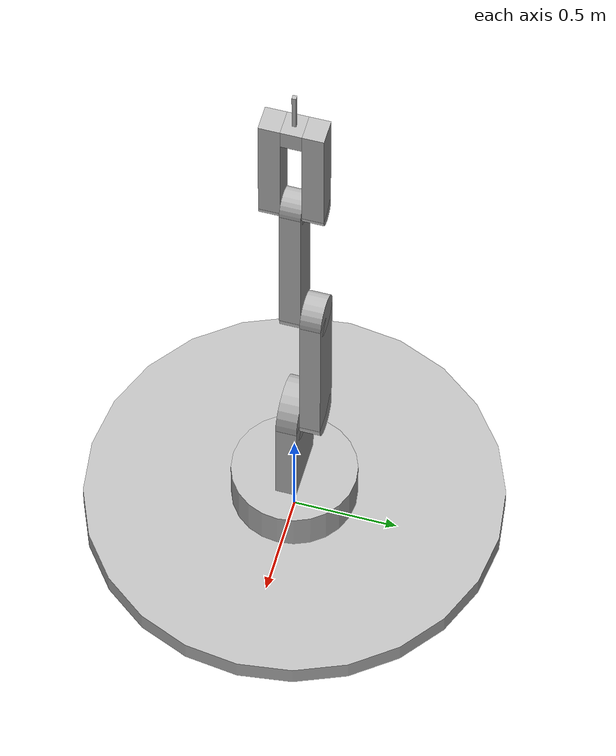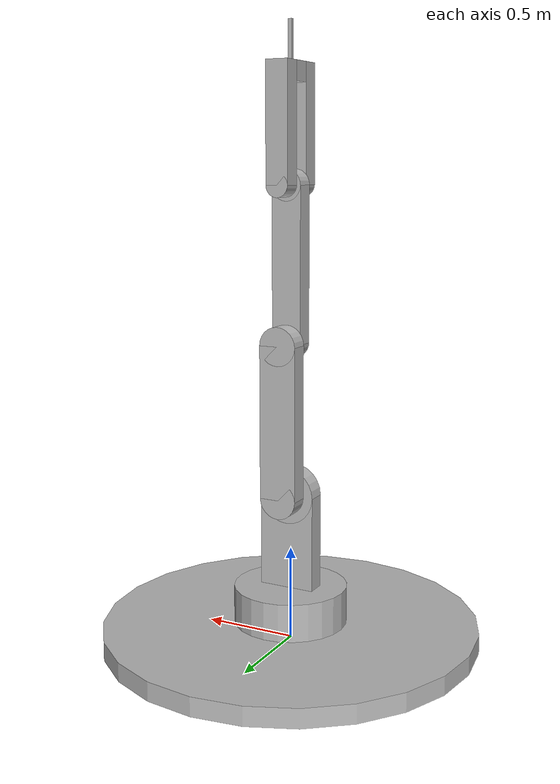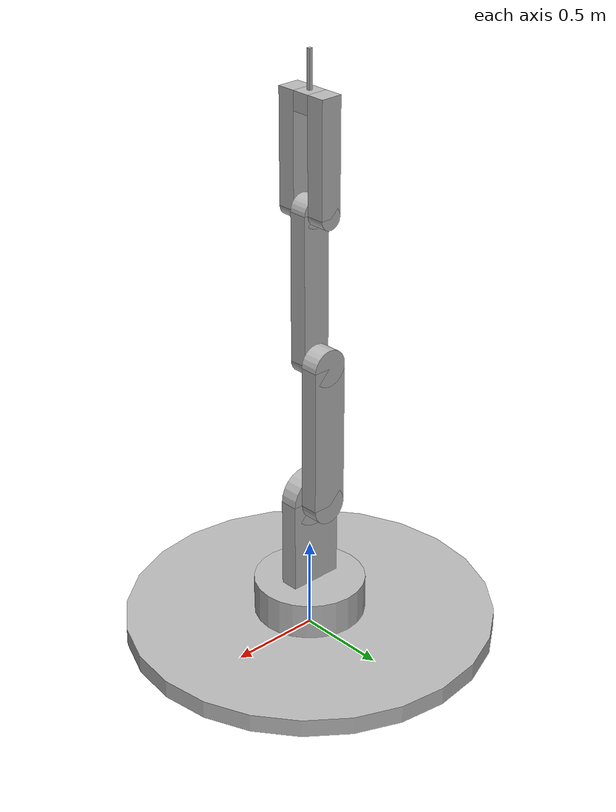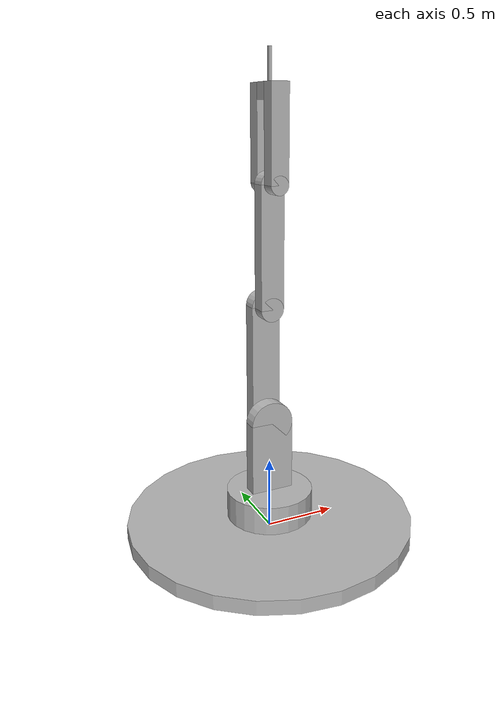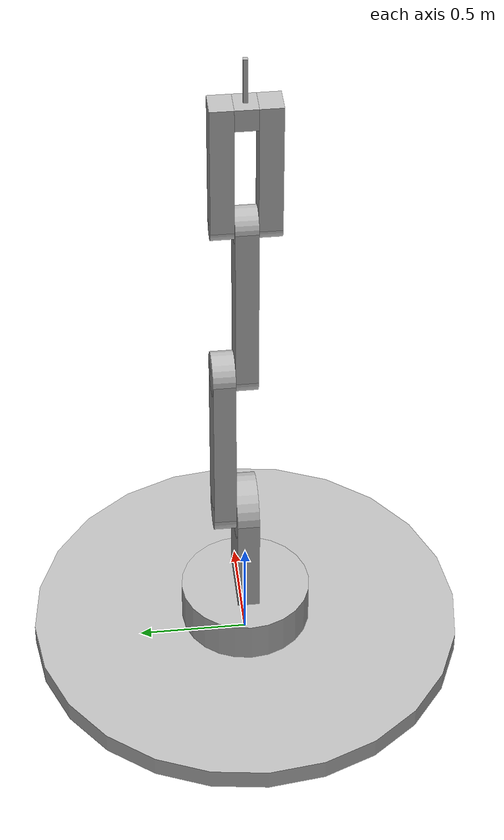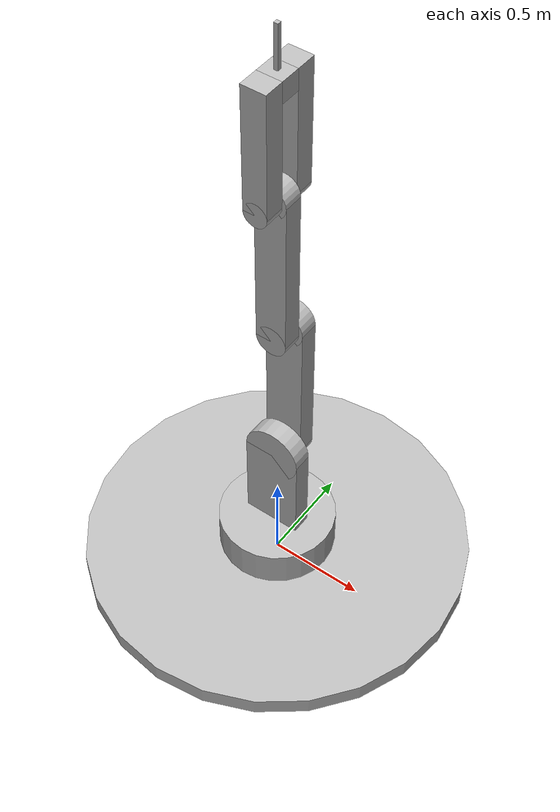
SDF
<?xml version='1.0'?>
<sdf version='1.4'>
  <model name="my_robot">
	<static>false</static>

          <link name='base'>

          <pose>0 0 .05 0 0 0</pose>
            <collision name='collision'>
              <geometry>
                <cylinder>
                  <radius>1</radius>
                  <length>.1</length>
                </cylinder>
              </geometry>
            </collision>

            <visual name='visual'>
              <geometry>
                <cylinder>
                  <radius>1</radius>
                  <length>.1</length>
                </cylinder>
              </geometry>
            </visual>
          </link>

          <link name='firs_joint'>
          <pose>0 0 .2 0 0 0</pose>
            <collision name='collision'>
              <geometry>
                <cylinder>
                  <radius>.3</radius>
                  <length>.2</length>
                </cylinder>
              </geometry>
            </collision>

            <visual name='visual'>
              <geometry>
                <cylinder>
                  <radius>.3</radius>
                  <length>.2</length>
                </cylinder>
              </geometry>
            </visual>
          </link>

           <link name='center_support_1_2'>
              <pose>0 0 .55 0 0 0</pose>
              <collision name='collision'>
                <geometry>
                  <box>
                    <size>.3 .1 .5</size>
                  </box>
                </geometry>
              </collision>

              <visual name='visual'>
                <geometry>
                  <box>
                    <size>.3 .1 .5</size>
                  </box>
                </geometry>
              </visual>
            </link>

               <link name='second_joint_support'>
              <pose>0 0 .8 0 1.5707 1.5707</pose>
                <collision name='collision'>
                  <geometry>
                    <cylinder>
                      <radius>.15</radius>
                      <length>.1</length>
                    </cylinder>
                  </geometry>
                </collision>

                <visual name='visual'>
                  <geometry>
                    <cylinder>
                      <radius>.15</radius>
                      <length>.1</length>
                    </cylinder>
                  </geometry>
                </visual>
              </link>

              <link name='second_joint'>
                <pose>0 0.1 .8 0 1.5707 1.5707</pose>
                  <collision name='collision'>
                    <geometry>
                      <cylinder>
                        <radius>.1</radius>
                        <length>.1</length>
                      </cylinder>
                    </geometry>
                  </collision>

                  <visual name='visual'>
                    <geometry>
                      <cylinder>
                        <radius>.1</radius>
                        <length>.1</length>
                      </cylinder>
                    </geometry>
                  </visual>
                </link>

              <link name='center_support_2_3'>
              <pose>0 .1 1.2 0 0 0</pose>
              <collision name='collision'>
                <geometry>
                  <box>
                    <size>.2 .1 .8</size>
                  </box>
                </geometry>
              </collision>

              <visual name='visual'>
                <geometry>
                  <box>
                    <size>.2 .1 .8</size>
                  </box>
                </geometry>
              </visual>
            </link>

            <link name='third_joint_support'>
                <pose>0 0.1 1.6 0 1.5707 1.5707</pose>
                  <collision name='collision'>
                    <geometry>
                      <cylinder>
                        <radius>.1</radius>
                        <length>.1</length>
                      </cylinder>
                    </geometry>
                  </collision>

                  <visual name='visual'>
                    <geometry>
                      <cylinder>
                        <radius>.1</radius>
                        <length>.1</length>
                      </cylinder>
                    </geometry>
                  </visual>
                </link>

                <link name='third_joint'>
                  <pose>0 0 1.6 0 1.5707 1.5707</pose>
                    <collision name='collision'>
                      <geometry>
                        <cylinder>
                          <radius>.08</radius>
                          <length>.1</length>
                        </cylinder>
                      </geometry>
                    </collision>

                    <visual name='visual'>
                      <geometry>
                        <cylinder>
                          <radius>.08</radius>
                          <length>.1</length>
                        </cylinder>
                      </geometry>
                    </visual>
                </link>

                <link name='center_support_3_4'>
                  <pose>0 0 2 0 0 0</pose>
                  <collision name='collision'>
                    <geometry>
                      <box>
                        <size>.16 .1 .8</size>
                      </box>
                    </geometry>
                  </collision>

                  <visual name='visual'>
                    <geometry>
                      <box>
                        <size>.16 .1 .8</size>
                      </box>
                    </geometry>
                  </visual>
                </link>

                <link name='fourth_joint_support'>
                <pose>0 0 2.4 0 1.5707 1.5707</pose>
                  <collision name='collision'>
                    <geometry>
                      <cylinder>
                        <radius>.1</radius>
                        <length>.1</length>
                      </cylinder>
                    </geometry>
                  </collision>

                  <visual name='visual'>
                    <geometry>
                      <cylinder>
                        <radius>.08</radius>
                        <length>.1</length>
                      </cylinder>
                    </geometry>
                  </visual>
                </link>

                <link name='fourth_joint'>
                  <pose>0 .1 2.4 0 1.5707 1.5707</pose>
                    <collision name='collision'>
                      <geometry>
                        <cylinder>
                          <radius>.06</radius>
                          <length>.1</length>
                        </cylinder>
                      </geometry>
                    </collision>

                    <visual name='visual'>
                      <geometry>
                        <cylinder>
                          <radius>.06</radius>
                          <length>.1</length>
                        </cylinder>
                      </geometry>
                    </visual>
                </link>

                <link name='fourth_joint2'>
                  <pose>0 -.1 2.4 0 1.5707 1.5707</pose>
                    <collision name='collision'>
                      <geometry>
                        <cylinder>
                          <radius>.06</radius>
                          <length>.1</length>
                        </cylinder>
                      </geometry>
                    </collision>

                    <visual name='visual'>
                      <geometry>
                        <cylinder>
                          <radius>.06</radius>
                          <length>.1</length>
                        </cylinder>
                      </geometry>
                    </visual>
                </link>

                 <link name='right_grab'>
                  <pose>0 -.1 2.7 0 0 0</pose>
                  <collision name='collision'>
                    <geometry>
                      <box>
                        <size>.12 .1 .6</size>
                      </box>
                    </geometry>
                  </collision>

                  <visual name='visual'>
                    <geometry>
                      <box>
                        <size>.12 .1 .6</size>
                      </box>
                    </geometry>
                  </visual>
                </link>

                <link name='left_grab'>
                  <pose>0 .1 2.7 0 0 0</pose>
                  <collision name='collision'>
                    <geometry>
                      <box>
                        <size>.12 .1 .6</size>
                      </box>
                    </geometry>
                  </collision>

                  <visual name='visual'>
                    <geometry>
                      <box>
                        <size>.12 .1 .6</size>
                      </box>
                    </geometry>
                  </visual>
                </link>

                <link name='grab'>
                  <pose>0 0 2.95 0 0 0</pose>
                  <collision name='collision'>
                    <geometry>
                      <box>
                        <size>.12 .1 .1</size>
                      </box>
                    </geometry>
                  </collision>

                  <visual name='visual'>
                    <geometry>
                      <box>
                        <size>.12 .1 .1</size>
                      </box>
                    </geometry>
                  </visual>
                </link>

                <link name='drill'>
                  <pose>0 0 3.1 0 0 0</pose>
                  <collision name='collision'>
                    <geometry>
                      <box>
                        <size>.02 .02 .2</size>
                      </box>
                    </geometry>
                  </collision>

                  <visual name='visual'>
                    <geometry>
                      <box>
                        <size>.02 .02 .2</size>
                      </box>
                    </geometry>
                  </visual>
                </link>

                <joint type="fixed" name="f1">
                  <pose>0 0 0 0 0 0</pose>
                  <child>center_support_1_2</child>
                  <parent>firs_joint</parent>
                </joint>

                <joint type="fixed" name="f2">
                  <pose>0 0 0 0 0 0</pose>
                  <child>second_joint_support</child>
                  <parent>center_support_1_2</parent>
                </joint>

                <joint type="fixed" name="f3">
                  <pose>0 0 0 0 0 0</pose>
                  <child>center_support_2_3</child>
                  <parent>second_joint</parent>
                </joint>

                <joint type="fixed" name="f4">
                  <pose>0 0 0 0 0 0</pose>
                  <child>third_joint_support</child>
                  <parent>center_support_2_3</parent>
                </joint>

                <joint type="fixed" name="f5">
                  <pose>0 0 0 0 0 0</pose>
                  <child>center_support_3_4</child>
                  <parent>third_joint</parent>
                </joint>

                <joint type="fixed" name="f6">
                  <pose>0 0 0 0 0 0</pose>
                  <child>fourth_joint_support</child>
                  <parent>center_support_3_4</parent>
                </joint>

                <joint type="fixed" name="f7">
                  <pose>0 0 0 0 0 0</pose>
                  <child>fourth_joint2</child>
                  <parent>fourth_joint</parent>
                </joint>

                <joint type="fixed" name="f8">
                  <pose>0 0 0 0 0 0</pose>
                  <child>right_grab</child>
                  <parent>fourth_joint</parent>
                </joint>

                <joint type="fixed" name="f9">
                  <pose>0 0 0 0 0 0</pose>
                  <child>left_grab</child>
                  <parent>fourth_joint2</parent>
                </joint>

                <joint type="fixed" name="f10">
                  <pose>0 0 0 0 0 0</pose>
                  <child>left_grab</child>
                  <parent>grab</parent>
                </joint>

                <joint type="fixed" name="f11">
                  <pose>0 0 0 0 0 0</pose>
                  <child>drill</child>
                  <parent>grab</parent>
                </joint>

                <joint type="revolute" name="rotate_first_joint">
                  <pose>0 0 0 0 0 0</pose>
                  <child>firs_joint</child>
                  <parent>base</parent>
                  <axis>
                    <xyz>0 0 1</xyz>
                  </axis>
                </joint>

                <joint type="revolute" name="rotate_second_joint">
                  <pose>0 0 0 0 0 0</pose>
                  <child>second_joint</child>
                  <parent>second_joint_support</parent>
                  <axis>
                    <xyz>0 1 0</xyz>
                  </axis>
                </joint>

                <joint type="revolute" name="rotate_third_joint">
                  <pose>0 0 0 0 0 0</pose>
                  <child>third_joint</child>
                  <parent>third_joint_support</parent>
                  <axis>
                    <xyz>0 1 0</xyz>
                  </axis>
                </joint>

                <joint type="revolute" name="fourth_second_joint">
                  <pose>0 0 0 0 0 0</pose>
                  <child>fourth_joint</child>
                  <parent>fourth_joint_support</parent>
                  <axis>
                    <xyz>0 1 0</xyz>
                  </axis>
                </joint>

  </model>
</sdf>
